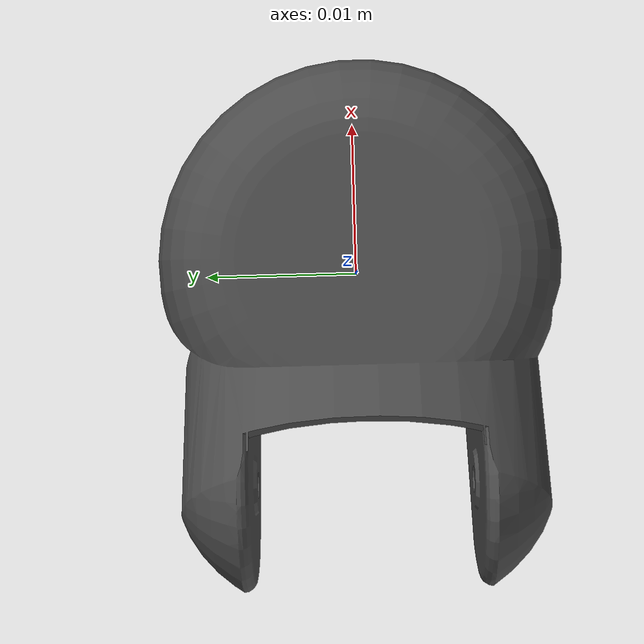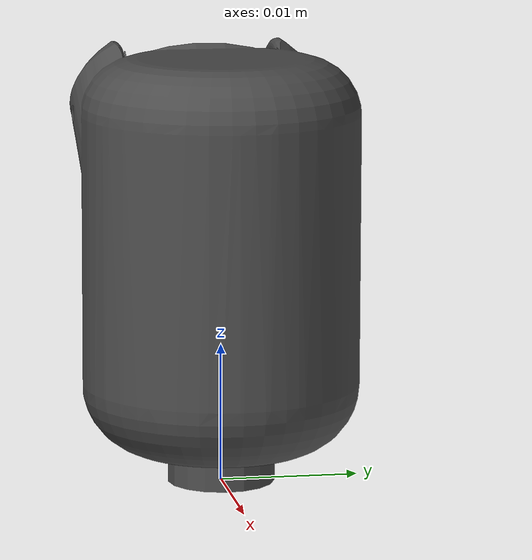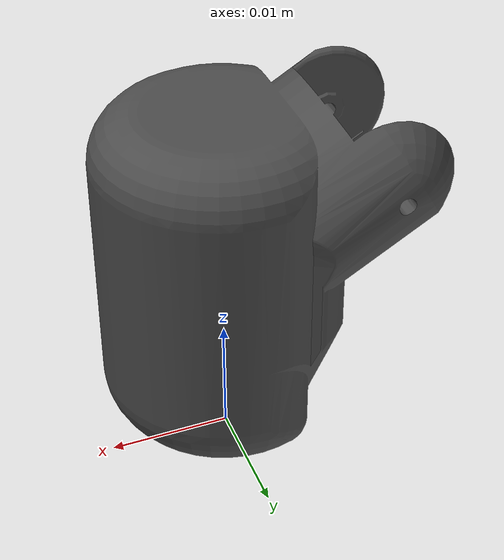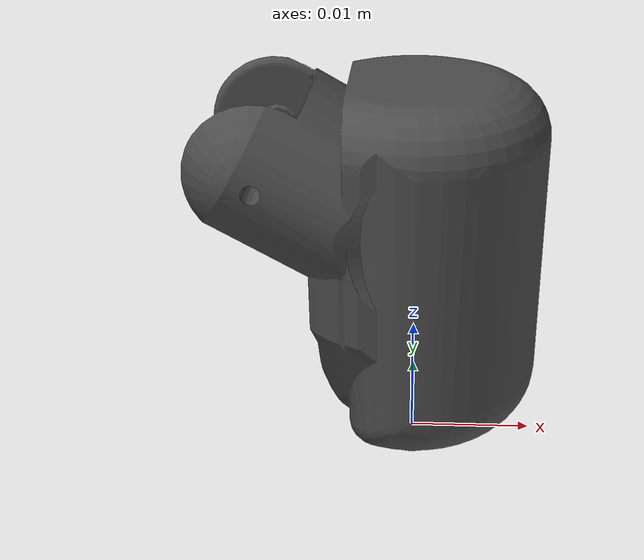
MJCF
<mujoco model="thumb_left_link">
  <default>
    <default class="visual">
      <geom group="2" type="mesh" contype="0" conaffinity="0"/>
    </default>
    <default class="collision">
      <geom group="3" type="mesh"/>
    </default>
  </default>
  <asset>
    <material name="mtl_thumb_left_link" specular="0.20000000000000004" shininess="1.0" rgba="0.29803922 0.29803922 0.29803922 1.0"/>
    <mesh file="thumb_left_link.obj"/>
  </asset>
  <worldbody>
    <body name="thumb_left_link">
      <geom material="mtl_thumb_left_link" mesh="thumb_left_link" class="visual"/>
      <geom mesh="thumb_left_link" class="collision"/>
    </body>
  </worldbody>
</mujoco>
